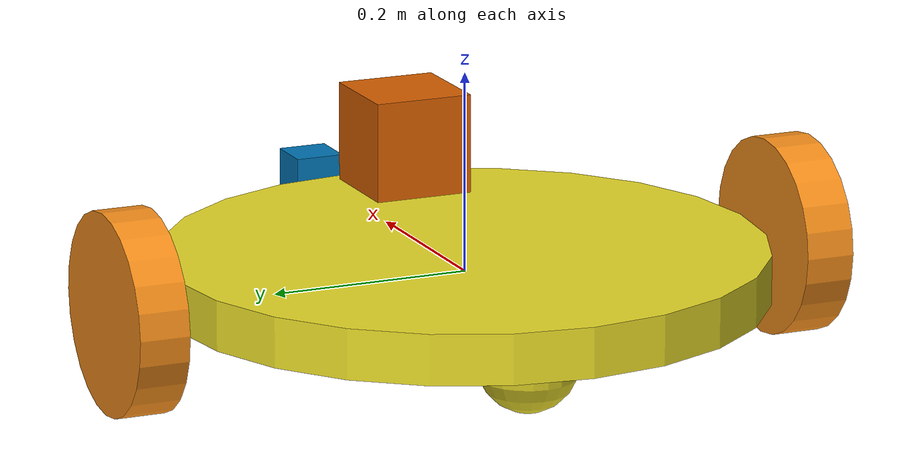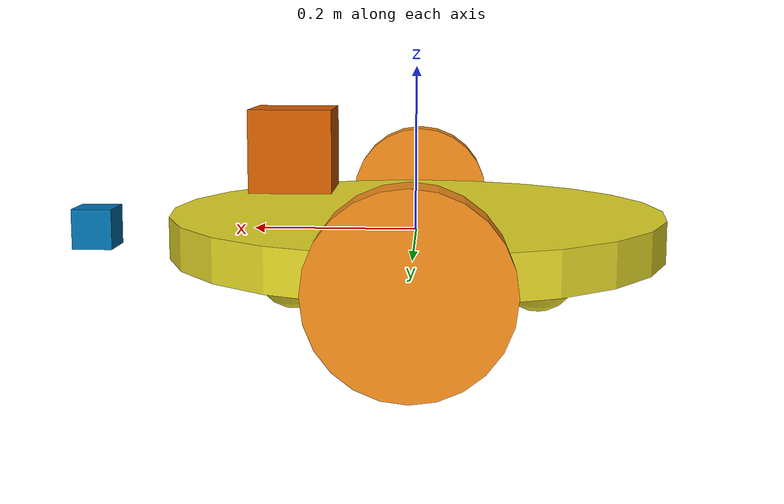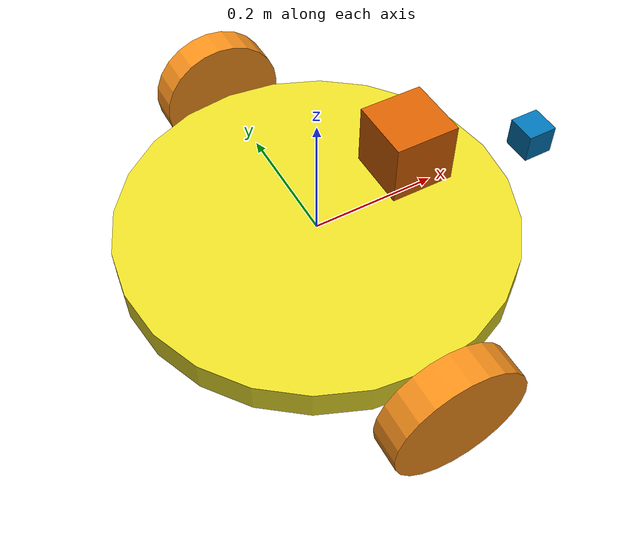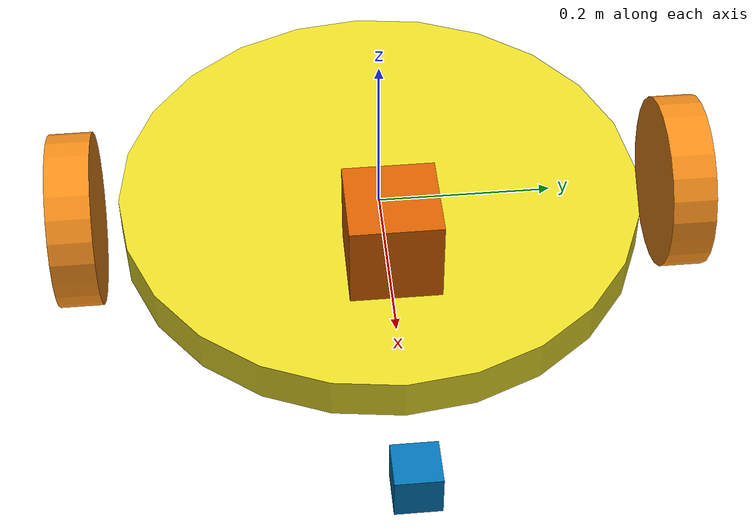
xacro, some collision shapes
<?xml version='1.0'?>

<robot name="my_robot" xmlns:xacro="http://www.ros.org/wiki/xacro">

  <xacro:include filename="$(find my_robot)/urdf/my_robot.gazebo" />

  <link name="robot_footprint"></link>

  <joint name="robot_footprint_joint" type="fixed">
    <origin xyz="0 0 0" rpy="0 0 0" />
    <parent link="robot_footprint"/>
    <child link="chassis" />
  </joint>

  <!-- Chassis link -->
  <link name='chassis'>
    <pose>0 0 0.1 0 0 0</pose>

    <inertial>
      <mass value="10.0"/>
      <origin xyz="0.0 0 0" rpy=" 0 0 0"/>
      <inertia
          ixx="0.1" ixy="0" ixz="0"
          iyy="0.1" iyz="0"
          izz="0.1"
      />
    </inertial>

    <collision name='collision'>
      <origin xyz="0 0 0" rpy=" 0 0 0"/>
      <geometry>
        <cylinder radius="0.3" length="0.05"/>
      </geometry>
    </collision>

    <visual name='chassis_visual'>
      <origin xyz="0 0 0" rpy=" 0 0 0"/>
      <geometry>
        <cylinder radius="0.3" length="0.05"/>
      </geometry>
    </visual>

    <collision name='back_caster_collision'>
      <origin xyz="-0.15 0 -0.05" rpy=" 0 0 0"/>
      <geometry>
        <sphere radius="0.05"/>
      </geometry>
    </collision>

    <visual name='back_caster_visual'>
      <origin xyz="-0.15 0 -0.05" rpy=" 0 0 0"/>
      <geometry>
        <sphere radius="0.05"/>
      </geometry>
    </visual>

    <collision name='front_caster_collision'>
      <origin xyz="0.15 0 -0.05" rpy=" 0 0 0"/>
      <geometry>
        <sphere radius="0.05"/>
      </geometry>
    </collision>

    <visual name='front_caster_visual'>
      <origin xyz="0.15 0 -0.05" rpy=" 0 0 0"/>
      <geometry>
        <sphere radius="0.05"/>
      </geometry>
    </visual>

  </link>

  <!-- left wheel link -->
  <link name="left_wheel">
    <collision name="left_wheel_collision">
      <origin xyz="0 0 0" rpy="0 0 0"/>
      <geometry>
        <cylinder radius="0.1" length="0.05"/>
      </geometry>
    </collision>
    <visual name="left_wheel_visual">
      <origin xyz="0 0 0" rpy="0 0 0"/>
      <geometry>
        <cylinder radius="0.1" length="0.05"/>
      </geometry>
    </visual>
    <inertial>
      <origin xyz="0 0 0" rpy="0 0 0"/>
      <mass value="5"/>
      <inertia
          ixx="0.1" ixy="0" ixz="0"
          iyy="0.1" iyz="0"
          izz="0.1"
      />
    </inertial>
  </link>

  <!-- right wheel link -->
  <link name="right_wheel">
    <collision name="right_wheel_collision">
      <origin xyz="0 0 0" rpy="0 0 0"/>
      <geometry>
        <cylinder radius="0.1" length="0.05"/>
      </geometry>
    </collision>
    <visual name="right_wheel_visual">
      <origin xyz="0 0 0" rpy="0 0 0"/>
      <geometry>
        <cylinder radius="0.1" length="0.05"/>
      </geometry>
    </visual>
    <inertial>
      <origin xyz="0 0 0" rpy="0 0 0"/>
      <mass value="5"/>
      <inertia
          ixx="0.1" ixy="0" ixz="0"
          iyy="0.1" iyz="0"
          izz="0.1"
      />
    </inertial>
  </link>

  <!-- chassis to left wheel joint -->
  <joint type="continuous" name="left_wheel_hinge">
    <origin xyz="0 0.35 0" rpy="1.57 0 0"/>
    <child link="left_wheel"/>
    <parent link="chassis"/>
    <axis xyz="0 0 -1" rpy="0 0 0"/>
    <limit effort="10000" velocity="1000"/>
    <dynamics damping="1.0" friction="1.0"/>
  </joint>

  <!-- chassis to right wheel joint -->
  <joint type="continuous" name="right_wheel_hinge">
    <origin xyz="0 -0.35 0" rpy="-1.57 0 0"/>
    <child link="right_wheel"/>
    <parent link="chassis"/>
    <axis xyz="0 0 1" rpy="0 0 0"/>
    <limit effort="10000" velocity="1000"/>
    <dynamics damping="1.0" friction="1.0"/>
  </joint>

  <!-- camera link -->
  <link name="camera">
    <visual name="visual_camera">
      <origin xyz="0 0 0" rpy="0 0 0"/>
      <geometry>
        <box size="0.05 0.05 0.05"/>
      </geometry>
    </visual>
    <collision name="collision_camera">
      <origin xyz="0 0 0" rpy="0 0 0"/>
      <geometry>
        <box size="0.05 0.05 0.05"/>
      </geometry>
    </collision>
    <inertial>
      <mass value="0.1"/>
      <inertia
          ixx="1e-6" ixy="0" ixz="0"
          iyy="1e-6" iyz="0"
          izz="1e-6"
      />
    </inertial>
  </link>

  <!-- chassis to camera joint -->
  <joint type="fixed" name="camera_joint">
    <origin xyz="0.4 0 0" rpy="0 0 0"/>
    <child link="camera"/>
    <parent link="chassis"/>
    <axis xyz="0 1 0" rpy="0 0 0"/>
  </joint>

  <!-- lidar link -->
  <link name="hokuyo">
    <visual name="visual_hokuyo">
      <origin xyz="0 0 0" rpy="0 0 0"/>
      <geometry>
        <mesh filename="package://my_robot/meshes/hokuyo.dae"/>
      </geometry>
    </visual>
    <collision name="collision_hokuyo">
      <origin xyz="0 0 0" rpy="0 0 0"/>
      <geometry>
        <box size="0.1 0.1 0.1"/>
      </geometry>
    </collision>
    <inertial>
      <mass value="1e-5"/>
      <inertia
          ixx="1e-6" ixy="0" ixz="0"
          iyy="1e-6" iyz="0"
          izz="1e-6"
      />
    </inertial>
  </link>

  <!-- chassis to lidar joint -->
  <joint type="fixed" name="hokuyo_joint">
    <origin xyz="0.15 0 0.1" rpy="0 0 0"/>
    <child link="hokuyo"/>
    <parent link="chassis"/>
    <axis xyz="0 1 0" rpy="0 0 0"/>
  </joint>

  <gazebo reference="left_wheel">
    <material>Gazebo/Orange</material>
  </gazebo>
  <gazebo reference="right_wheel">
    <material>Gazebo/Orange</material>
  </gazebo>
  <gazebo reference="chassis">
    <material>Gazebo/Yellow</material>
  </gazebo>

</robot>
